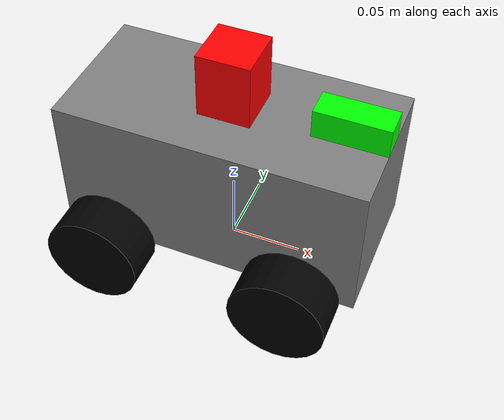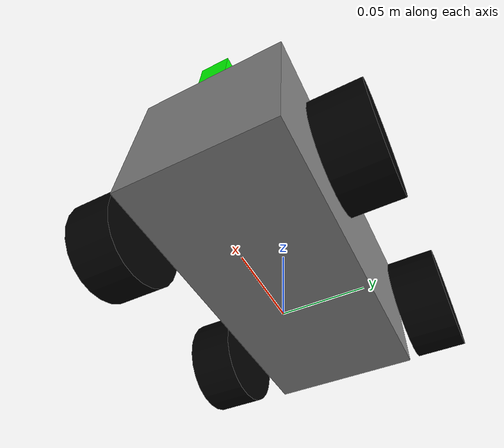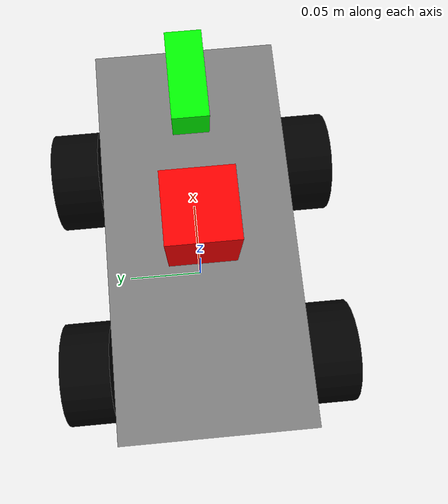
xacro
<?xml version="1.0" ?>
<robot name="mecanum" xmlns:xacro="http://ros.org/wiki/xacro">

  <material name="black"><color rgba="0 0 0 1"/></material>
  <material name="grey"><color rgba="0.5 0.5 0.5 1"/></material>
  <material name="red"><color rgba="1 0 0 1"/></material>
  <material name="green"><color rgba="0 1 0 1"/></material>

  <link name="base_footprint"/>

  <joint name="base_footprint_to_base_link" type="fixed">
    <parent link="base_footprint"/>
    <child link="base_link"/>
    <origin xyz="0 0 0.07" rpy="0 0 0"/>
  </joint>

  <link name="base_link">
    <inertial>
      <origin rpy="0 0 0" xyz="0 0 0"/>
      <mass value="5.0"/>
      <inertia ixx="0.01" ixy="0" ixz="0" iyy="0.01" iyz="0" izz="0.05"/>
    </inertial>
    <visual>
      <origin rpy="0 0 0" xyz="0 0 0"/>
      <geometry>
        <box size="0.21 0.1 0.1"/>
      </geometry>
      <material name="grey"/>
    </visual>
    <collision>
      <origin rpy="0 0 0" xyz="0 0 0"/>
      <geometry>
        <box size="0.21 0.1 0.1"/>
      </geometry>
    </collision>
  </link>

  <gazebo reference="base_link">
    <material>Gazebo/Grey</material>
  </gazebo>

  <link name="imu_link"/>
  <joint name="imu_joint" type="fixed">
    <parent link="base_link"/>
    <child link="imu_link"/>
    <origin xyz="0 0 0" rpy="0 0 -1.57"/>
  </joint>

  <gazebo>
    <plugin name="mecanum_controller" filename="libgazebo_ros_planar_move.so">
      <ros>
        <remapping>cmd_vel:=/cmd_vel</remapping>
        <remapping>odom:=/odom</remapping>
      </ros>

      <update_rate>100</update_rate>
      <publish_rate>100</publish_rate>

      <frame_name>base_footprint</frame_name>
      <child_frame_id>base_link</child_frame_id>
      <odom_frame_id>odom</odom_frame_id>

      <max_acceleration_x>1.5</max_acceleration_x>
      <max_acceleration_y>1.5</max_acceleration_y>
      <max_acceleration_theta>2.0</max_acceleration_theta>

      <covariance_x>0.001</covariance_x>
      <covariance_y>0.001</covariance_y>
      <covariance_yaw>0.001</covariance_yaw>
    </plugin>
  </gazebo>

  <xacro:macro name="wheel_link" params="prefix x_pos y_pos">
    <link name="wheel_${prefix}_Link">
      <inertial>
        <origin rpy="0 0 0" xyz="0 0 0"/>
        <mass value="0.2"/>
        <inertia ixx="0.0001" ixy="0" ixz="0" iyy="0.0001" iyz="0" izz="0.0001"/>
      </inertial>
      <visual>
        <origin rpy="1.57079 0 0" xyz="0 0 0"/>
        <geometry>
          <cylinder length="0.03" radius="0.0325"/>
        </geometry>
        <material name="black"/>
      </visual>
      <collision>
        <origin rpy="1.57079 0 0" xyz="0 0 0"/>
        <geometry>
          <cylinder length="0.03" radius="0.0325"/>
        </geometry>
      </collision>
    </link>

    <gazebo reference="wheel_${prefix}_Link">
      <mu1>0.0</mu1>
      <mu2>0.0</mu2>
      <material>Gazebo/Black</material>
    </gazebo>

    <joint name="wheel_${prefix}_Joint" type="fixed">
      <origin rpy="0 0 0" xyz="${x_pos} ${y_pos} -0.0375"/>
      <parent link="base_link"/>
      <child link="wheel_${prefix}_Link"/>
    </joint>
  </xacro:macro>

  <xacro:wheel_link prefix="lf" x_pos="0.065"  y_pos="0.075" />
  <xacro:wheel_link prefix="rf" x_pos="0.065"  y_pos="-0.075"/>
  <xacro:wheel_link prefix="lb" x_pos="-0.065" y_pos="0.075" />
  <xacro:wheel_link prefix="rb" x_pos="-0.065" y_pos="-0.075"/>

  <link name="depth_cam">
    <visual>
      <origin rpy="0 0 0" xyz="0 0 0"/>
      <geometry>
        <box size="0.05 0.02 0.02"/>
      </geometry>
      <material name="green"/>
    </visual>
    <collision>
      <origin rpy="0 0 0" xyz="0 0 0"/>
      <geometry>
         <box size="0.05 0.02 0.02"/>
      </geometry>
    </collision>
    <inertial>
      <mass value="0.05"/>
      <inertia ixx="0.0001" ixy="0" ixz="0" iyy="0.0001" iyz="0" izz="0.0001"/>
    </inertial>
  </link>

  <joint name="cam_Joint" type="fixed">
    <origin rpy="0 0 0" xyz="0.08 0 0.06"/>
    <parent link="base_link"/>
    <child link="depth_cam"/>
  </joint>

  <gazebo reference="depth_cam">
    <material>Gazebo/Green</material>
    <sensor name="depth_camera" type="depth">
      <visualize>true</visualize> <update_rate>30.0</update_rate>
      <camera name="camera">
        <horizontal_fov>1.047</horizontal_fov>
        <image>
          <width>640</width>
          <height>480</height>
          <format>R8G8B8</format>
        </image>
        <clip>
          <near>0.05</near> <far>8.0</far>
        </clip>
      </camera>
      <plugin name="depth_camera_controller" filename="libgazebo_ros_camera.so">
        <ros>
          <namespace>camera</namespace> </ros>
        <frame_name>depth_cam</frame_name> <min_depth>0.1</min_depth>
        <max_depth>10.0</max_depth>
      </plugin>
    </sensor>
  </gazebo>

  <link name="lidar_frame">
    <visual>
      <origin rpy="0 0 0" xyz="0 0 0"/>
      <geometry>
        <box size="0.036 0.036 0.045"/>
      </geometry>
      <material name="red"/>
    </visual>
    <collision>
      <origin rpy="0 0 0" xyz="0 0 0"/>
      <geometry>
        <box size="0.036 0.036 0.045"/>
      </geometry>
    </collision>
    <inertial>
      <mass value="0.1"/>
      <inertia ixx="0.0001" ixy="0" ixz="0" iyy="0.0001" iyz="0" izz="0.0001"/>
    </inertial>
  </link>

  <joint name="lidar_Joint" type="fixed">
    <origin rpy="0 0 3.1415926" xyz="0 0 0.0725"/>
    <parent link="base_link"/>
    <child link="lidar_frame"/>
  </joint>

  <gazebo reference="lidar_frame">
    <material>Gazebo/Red</material>
    <sensor name="laser_sensor" type="ray">
      <pose>0 0 0.04 0 0 0</pose>
      <always_on>true</always_on>
      <visualize>true</visualize>
      <update_rate>10</update_rate>

      <ray>
        <scan>
          <horizontal>
            <samples>448</samples>
            <resolution>1</resolution>
            <min_angle>-3.1415926</min_angle>
            <max_angle>3.1415926</max_angle>
          </horizontal>
        </scan>
        <range>
          <min>0.05</min>
          <max>12.0</max>
          <resolution>0.01</resolution>
        </range>
        <noise>
          <type>gaussian</type>
          <mean>0.0</mean>
          <stddev>0.015</stddev>
        </noise>
      </ray>

      <plugin name="laserscan" filename="libgazebo_ros_ray_sensor.so">
        <ros>
          <argument>~/out:=scan</argument>
        </ros>
        <output_type>sensor_msgs/LaserScan</output_type>
        <frame_name>lidar_frame</frame_name>
      </plugin>
    </sensor>
  </gazebo>

</robot>
